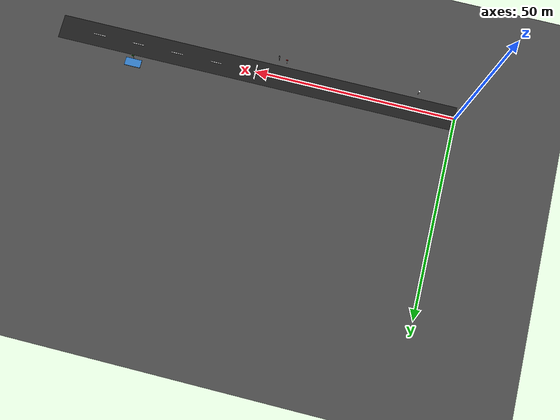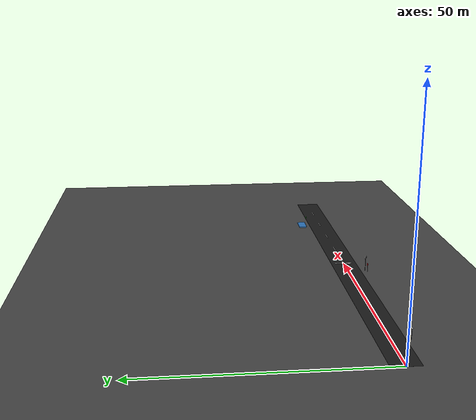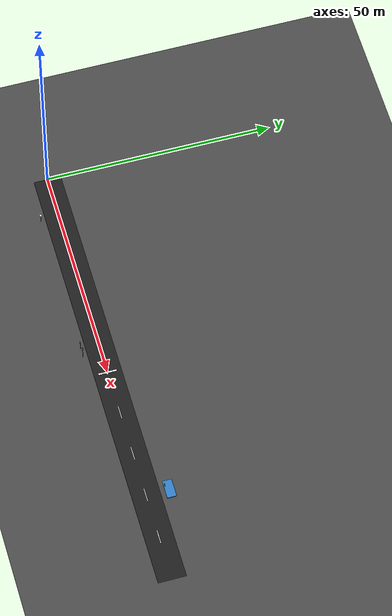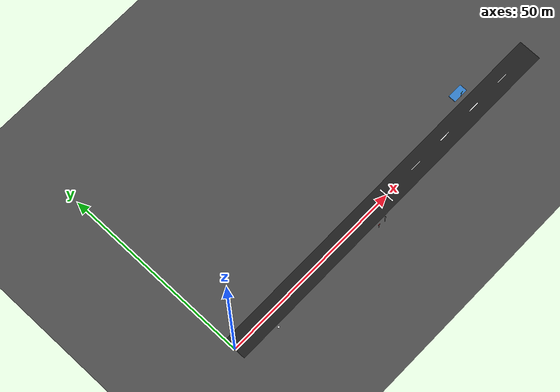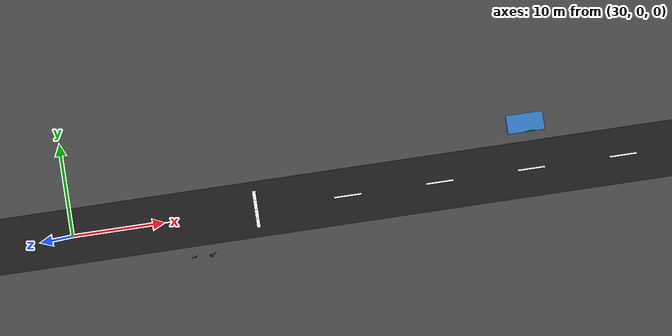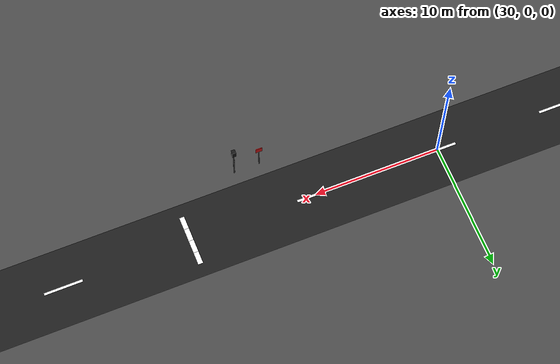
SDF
<?xml version="1.0"?>
<sdf version="1.6">
  <world name="simple_test">
    <light name="sun" type="directional">
      <cast_shadows>true</cast_shadows>
      <pose>0 0 10 0 0 0</pose>
      <diffuse>0.9 0.9 0.9 1</diffuse>
      <specular>0.1 0.1 0.1 1</specular>
      <direction>-0.5 0.1 -0.9</direction>
    </light>
    <physics name="default_physics" default="0" type="ode">
      <max_step_size>0.001</max_step_size>
      <real_time_factor>1</real_time_factor>
      <real_time_update_rate>1000</real_time_update_rate>
    </physics>
    <model name="ground_plane">
      <static>true</static>
      <link name="link">
        <collision name="collision"><geometry><plane><normal>0 0 1</normal></plane></geometry></collision>
        <visual name="visual">
          <geometry><plane><normal>0 0 1</normal><size>200 200</size></plane></geometry>
          <material><ambient>0.3 0.3 0.3 1</ambient><diffuse>0.3 0.3 0.3 1</diffuse></material>
        </visual>
      </link>
    </model>
    <model name="road_main">
      <static>true</static>
      <pose>50 0 0.01 0 0 0</pose>
      <link name="link">
        <visual name="visual">
          <geometry><box><size>100 6 0.01</size></box></geometry>
          <material><ambient>0.12 0.12 0.12 1</ambient><diffuse>0.12 0.12 0.12 1</diffuse></material>
        </visual>
        <collision name="col"><geometry><box><size>100 6 0.01</size></box></geometry></collision>
      </link>
    </model>
    <model name="s1"><static>true</static><pose>10 0 0.02 0 0 0</pose><link name="l"><visual name="v"><geometry><box><size>3 0.2 0.01</size></box></geometry><material><ambient>1 1 1 1</ambient><diffuse>1 1 1 1</diffuse></material></visual></link></model>
    <model name="s2"><static>true</static><pose>20 0 0.02 0 0 0</pose><link name="l"><visual name="v"><geometry><box><size>3 0.2 0.01</size></box></geometry><material><ambient>1 1 1 1</ambient><diffuse>1 1 1 1</diffuse></material></visual></link></model>
    <model name="s3"><static>true</static><pose>30 0 0.02 0 0 0</pose><link name="l"><visual name="v"><geometry><box><size>3 0.2 0.01</size></box></geometry><material><ambient>1 1 1 1</ambient><diffuse>1 1 1 1</diffuse></material></visual></link></model>
    <model name="s4"><static>true</static><pose>40 0 0.02 0 0 0</pose><link name="l"><visual name="v"><geometry><box><size>3 0.2 0.01</size></box></geometry><material><ambient>1 1 1 1</ambient><diffuse>1 1 1 1</diffuse></material></visual></link></model>
    <model name="s5"><static>true</static><pose>60 0 0.02 0 0 0</pose><link name="l"><visual name="v"><geometry><box><size>3 0.2 0.01</size></box></geometry><material><ambient>1 1 1 1</ambient><diffuse>1 1 1 1</diffuse></material></visual></link></model>
    <model name="s6"><static>true</static><pose>70 0 0.02 0 0 0</pose><link name="l"><visual name="v"><geometry><box><size>3 0.2 0.01</size></box></geometry><material><ambient>1 1 1 1</ambient><diffuse>1 1 1 1</diffuse></material></visual></link></model>
    <model name="s7"><static>true</static><pose>80 0 0.02 0 0 0</pose><link name="l"><visual name="v"><geometry><box><size>3 0.2 0.01</size></box></geometry><material><ambient>1 1 1 1</ambient><diffuse>1 1 1 1</diffuse></material></visual></link></model>
    <model name="s8"><static>true</static><pose>90 0 0.02 0 0 0</pose><link name="l"><visual name="v"><geometry><box><size>3 0.2 0.01</size></box></geometry><material><ambient>1 1 1 1</ambient><diffuse>1 1 1 1</diffuse></material></visual></link></model>
    <model name="yaya1"><static>true</static><pose>50 -1.5 0.02 0 0 1.5707</pose><link name="l"><visual name="v"><geometry><box><size>1 0.4 0.01</size></box></geometry><material><ambient>1 1 1 1</ambient><diffuse>1 1 1 1</diffuse></material></visual></link></model>
    <model name="yaya2"><static>true</static><pose>50 -0.5 0.02 0 0 1.5707</pose><link name="l"><visual name="v"><geometry><box><size>1 0.4 0.01</size></box></geometry><material><ambient>1 1 1 1</ambient><diffuse>1 1 1 1</diffuse></material></visual></link></model>
    <model name="yaya3"><static>true</static><pose>50 0.5 0.02 0 0 1.5707</pose><link name="l"><visual name="v"><geometry><box><size>1 0.4 0.01</size></box></geometry><material><ambient>1 1 1 1</ambient><diffuse>1 1 1 1</diffuse></material></visual></link></model>
    <model name="yaya4"><static>true</static><pose>50 1.5 0.02 0 0 1.5707</pose><link name="l"><visual name="v"><geometry><box><size>1 0.4 0.01</size></box></geometry><material><ambient>1 1 1 1</ambient><diffuse>1 1 1 1</diffuse></material></visual></link></model>
    <model name="trafik_direk">
      <static>true</static><pose>45 -4 1.5 0 0 0</pose>
      <link name="link">
        <visual name="visual"><geometry><cylinder><radius>0.05</radius><length>3</length></cylinder></geometry><material><ambient>0.3 0.3 0.3 1</ambient><diffuse>0.3 0.3 0.3 1</diffuse></material></visual>
        <collision name="col"><geometry><cylinder><radius>0.05</radius><length>3</length></cylinder></geometry></collision>
      </link>
    </model>
    <model name="trafik_kutu">
      <static>true</static><pose>45 -4 3.3 0 0 0</pose>
      <link name="link"><visual name="visual"><geometry><box><size>0.3 0.3 0.6</size></box></geometry><material><ambient>0.1 0.1 0.1 1</ambient><diffuse>0.1 0.1 0.1 1</diffuse></material></visual></link>
    </model>
    <model name="trafik_kirmizi">
      <static>true</static><pose>45 -4 3.5 0 0 0</pose>
      <link name="link"><visual name="visual"><geometry><sphere><radius>0.1</radius></sphere></geometry><material><ambient>1 0 0 1</ambient><diffuse>1 0 0 1</diffuse></material></visual></link>
    </model>
    <model name="trafik_yesil">
      <static>true</static><pose>45 -4 3.1 0 0 0</pose>
      <link name="link"><visual name="visual"><geometry><sphere><radius>0.1</radius></sphere></geometry><material><ambient>0.1 0.3 0.1 1</ambient><diffuse>0.1 0.3 0.1 1</diffuse></material></visual></link>
    </model>
    <model name="dur_direk">
      <static>true</static><pose>43 -4 1 0 0 0</pose>
      <link name="link">
        <visual name="visual"><geometry><cylinder><radius>0.04</radius><length>2</length></cylinder></geometry><material><ambient>0.5 0.5 0.5 1</ambient><diffuse>0.5 0.5 0.5 1</diffuse></material></visual>
        <collision name="col"><geometry><cylinder><radius>0.04</radius><length>2</length></cylinder></geometry></collision>
      </link>
    </model>
    <model name="dur_tabela">
      <static>true</static><pose>43 -4 2.3 0 0 0</pose>
      <link name="link"><visual name="visual"><geometry><box><size>0.5 0.05 0.5</size></box></geometry><material><ambient>0.9 0.1 0.1 1</ambient><diffuse>0.9 0.1 0.1 1</diffuse></material></visual></link>
    </model>
    <model name="alma_platform">
      <static>true</static><pose>80 5 0.1 0 0 0</pose>
      <link name="link">
        <visual name="visual"><geometry><box><size>4 2 0.2</size></box></geometry><material><ambient>0.2 0.5 0.8 1</ambient><diffuse>0.2 0.5 0.8 1</diffuse></material></visual>
        <collision name="col"><geometry><box><size>4 2 0.2</size></box></geometry></collision>
      </link>
    </model>
    <model name="alma_levha_direk">
      <static>true</static><pose>80 4 1 0 0 0</pose>
      <link name="link">
        <visual name="visual"><geometry><cylinder><radius>0.04</radius><length>2</length></cylinder></geometry><material><ambient>0.5 0.5 0.5 1</ambient><diffuse>0.5 0.5 0.5 1</diffuse></material></visual>
      </link>
    </model>
    <model name="alma_levha">
      <static>true</static><pose>80 4 2.3 0 0 0</pose>
      <link name="link"><visual name="visual"><geometry><box><size>0.5 0.05 0.5</size></box></geometry><material><ambient>0.1 0.7 0.1 1</ambient><diffuse>0.1 0.7 0.1 1</diffuse></material></visual></link>
    </model>
    <model name="hiz_direk">
      <static>true</static><pose>10 -4 1 0 0 0</pose>
      <link name="link">
        <visual name="visual"><geometry><cylinder><radius>0.04</radius><length>2</length></cylinder></geometry><material><ambient>0.5 0.5 0.5 1</ambient><diffuse>0.5 0.5 0.5 1</diffuse></material></visual>
      </link>
    </model>
    <model name="hiz_tabela">
      <static>true</static><pose>10 -4 2.3 0 0 0</pose>
      <link name="link"><visual name="visual"><geometry><cylinder><radius>0.25</radius><length>0.05</length></cylinder></geometry><material><ambient>1 1 1 1</ambient><diffuse>1 1 1 1</diffuse></material></visual></link>
    </model>
    <gui fullscreen="0">
      <camera name="user_camera">
        <pose>-5 -10 8 0 0.6 0.3</pose>
        <view_controller>orbit</view_controller>
      </camera>
    </gui>
  </world>
</sdf>
